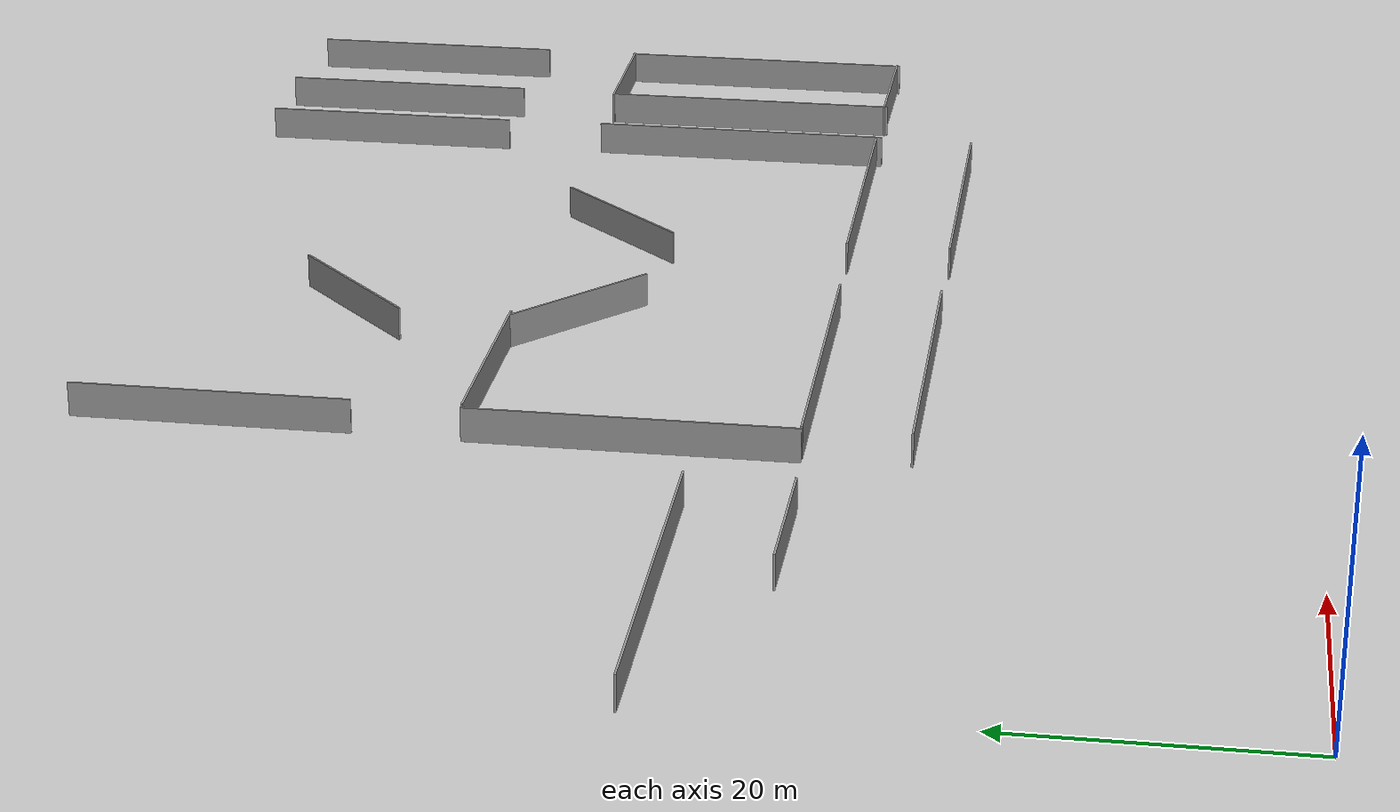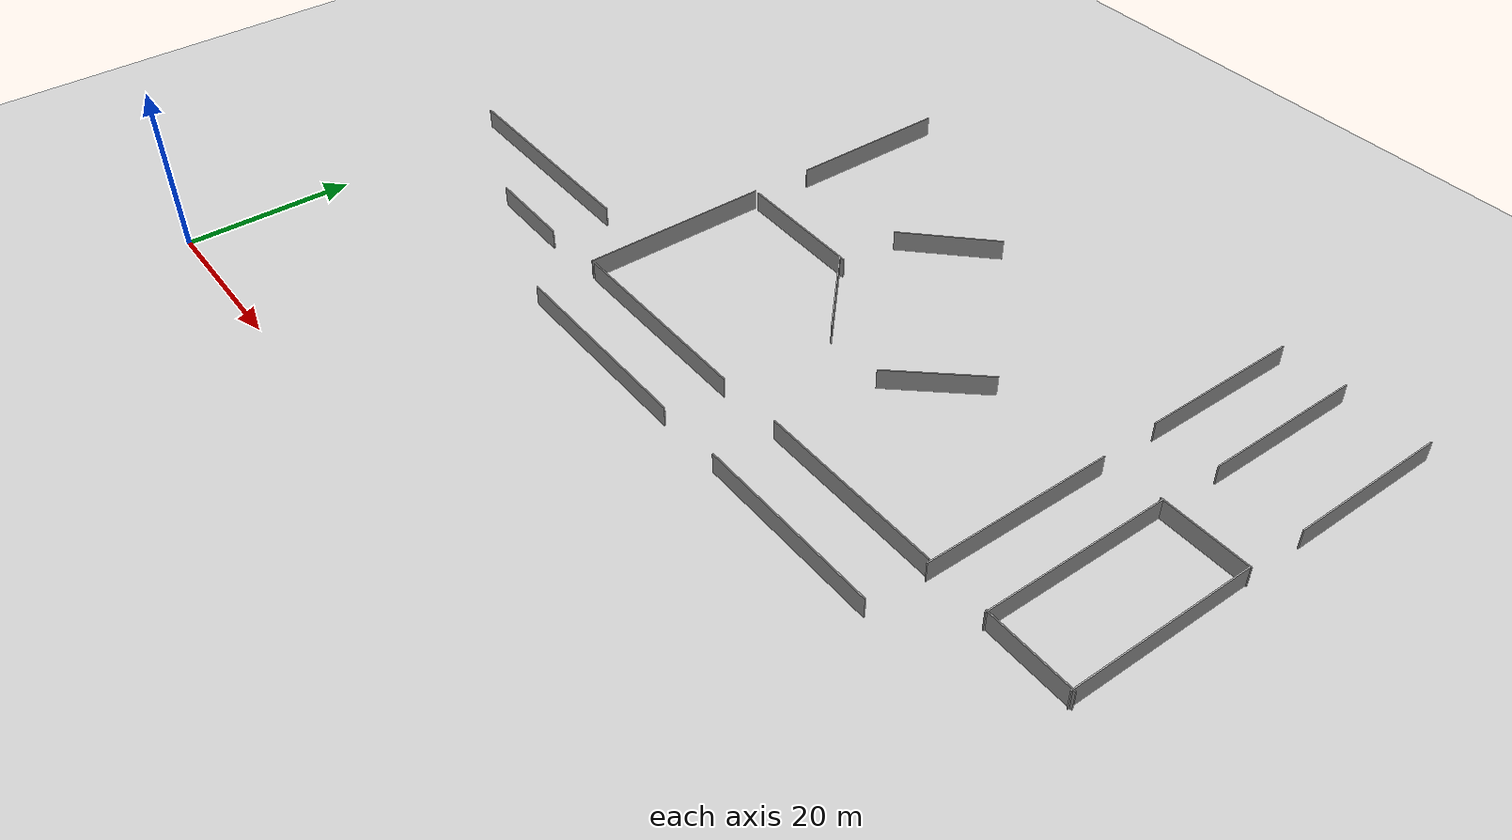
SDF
<sdf version="1.6">
 <world name="default">
  <model name="ground_plane">
   <static>1</static>
   <link name="link">
    <collision name="collision">
     <geometry><plane><normal>0 0 1</normal><size>100 100</size></plane></geometry>
     <surface>
      <contact><collide_bitmask>65535</collide_bitmask></contact>
      <friction><ode><mu>100</mu><mu2>50</mu2></ode></friction>
     </surface>
    </collision>
    <visual name="visual">
     <cast_shadows>0</cast_shadows>
     <geometry><plane><normal>0 0 1</normal><size>100 100</size></plane></geometry>
     <material>
      <script><uri>file://media/materials/scripts/gazebo.material</uri><name>Gazebo/Grey</name></script>
     </material>
    </visual>
   </link>
  </model>
  <model name="en_uzun_duvar2_clone_1_clone_clone_clone_0">
   <link name="Wall_2">
    <pose>10.2656 7.53235 0 0 -0 0</pose>
    <inertial>
     <inertia><ixx>0</ixx><ixy>0</ixy><ixz>0</ixz><iyy>0</iyy><iyz>0</iyz><izz>0</izz></inertia>
     <mass>0</mass>
    </inertial>
    <visual name="Wall_2_Visual">
     <pose>0 0 1.25 0 -0 0</pose>
     <geometry><box><size>19.779 0.15 2.5</size></box></geometry>
     <material>
      <script><uri>file://media/materials/scripts/gazebo.material</uri><name>Gazebo/Grey</name></script>
      <ambient>1 1 1 1</ambient>
     </material>
     <meta><layer>0</layer></meta>
    </visual>
    <collision name="Wall_2_Collision">
     <pose>0 0 1.25 0 -0 0</pose>
     <geometry><box><size>19.779 0.15 2.5</size></box></geometry>
     <surface>
      <friction>
       <ode><mu>1</mu><mu2>1</mu2><fdir1>0 0 0</fdir1><slip1>0</slip1><slip2>0</slip2></ode>
       <torsional>
        <coefficient>1</coefficient>
        <patch_radius>0</patch_radius>
        <surface_radius>0</surface_radius>
        <use_patch_radius>1</use_patch_radius>
        <ode><slip>0</slip></ode>
       </torsional>
      </friction>
      <bounce><restitution_coefficient>0</restitution_coefficient><threshold>1e+06</threshold></bounce>
      <contact>
       <collide_without_contact>0</collide_without_contact>
       <collide_without_contact_bitmask>1</collide_without_contact_bitmask>
       <collide_bitmask>1</collide_bitmask>
       <ode>
        <soft_cfm>0</soft_cfm>
        <soft_erp>0.2</soft_erp>
        <kp>1e+13</kp>
        <kd>1</kd>
        <max_vel>0.01</max_vel>
        <min_depth>0</min_depth>
       </ode>
       <bullet>
        <split_impulse>1</split_impulse>
        <split_impulse_penetration_threshold>-0.01</split_impulse_penetration_threshold>
        <soft_cfm>0</soft_cfm>
        <soft_erp>0.2</soft_erp>
        <kp>1e+13</kp>
        <kd>1</kd>
       </bullet>
      </contact>
     </surface>
    </collision>
   </link>
   <static>1</static>
   <pose>116.494 64.1139 0 0 -0 1.57059</pose>
  </model>
  <model name="en_uzun_duvar2_clone_1_clone_clone_clone_1">
   <link name="Wall_2">
    <pose>10.2656 7.53235 0 0 -0 0</pose>
    <inertial>
     <inertia><ixx>0</ixx><ixy>0</ixy><ixz>0</ixz><iyy>0</iyy><iyz>0</iyz><izz>0</izz></inertia>
     <mass>0</mass>
    </inertial>
    <visual name="Wall_2_Visual">
     <pose>0 0 1.25 0 -0 0</pose>
     <geometry><box><size>19.779 0.15 2.5</size></box></geometry>
     <material>
      <script><uri>file://media/materials/scripts/gazebo.material</uri><name>Gazebo/Grey</name></script>
      <ambient>1 1 1 1</ambient>
     </material>
     <meta><layer>0</layer></meta>
    </visual>
    <collision name="Wall_2_Collision">
     <pose>0 0 1.25 0 -0 0</pose>
     <geometry><box><size>19.779 0.15 2.5</size></box></geometry>
     <surface>
      <friction>
       <ode><mu>1</mu><mu2>1</mu2><fdir1>0 0 0</fdir1><slip1>0</slip1><slip2>0</slip2></ode>
       <torsional>
        <coefficient>1</coefficient>
        <patch_radius>0</patch_radius>
        <surface_radius>0</surface_radius>
        <use_patch_radius>1</use_patch_radius>
        <ode><slip>0</slip></ode>
       </torsional>
      </friction>
      <bounce><restitution_coefficient>0</restitution_coefficient><threshold>1e+06</threshold></bounce>
      <contact>
       <collide_without_contact>0</collide_without_contact>
       <collide_without_contact_bitmask>1</collide_without_contact_bitmask>
       <collide_bitmask>1</collide_bitmask>
       <ode>
        <soft_cfm>0</soft_cfm>
        <soft_erp>0.2</soft_erp>
        <kp>1e+13</kp>
        <kd>1</kd>
        <max_vel>0.01</max_vel>
        <min_depth>0</min_depth>
       </ode>
       <bullet>
        <split_impulse>1</split_impulse>
        <split_impulse_penetration_threshold>-0.01</split_impulse_penetration_threshold>
        <soft_cfm>0</soft_cfm>
        <soft_erp>0.2</soft_erp>
        <kp>1e+13</kp>
        <kd>1</kd>
       </bullet>
      </contact>
     </surface>
    </collision>
   </link>
   <static>1</static>
   <pose>106.131 64.4436 0 0 -0 1.57059</pose>
  </model>
  <model name="en_uzun_duvar2_clone_1_clone_clone_clone_2">
   <link name="Wall_2">
    <pose>10.2656 7.53235 0 0 -0 0</pose>
    <inertial>
     <inertia><ixx>0</ixx><ixy>0</ixy><ixz>0</ixz><iyy>0</iyy><iyz>0</iyz><izz>0</izz></inertia>
     <mass>0</mass>
    </inertial>
    <visual name="Wall_2_Visual">
     <pose>0 0 1.25 0 -0 0</pose>
     <geometry><box><size>19.779 0.15 2.5</size></box></geometry>
     <material>
      <script><uri>file://media/materials/scripts/gazebo.material</uri><name>Gazebo/Grey</name></script>
      <ambient>1 1 1 1</ambient>
     </material>
     <meta><layer>0</layer></meta>
    </visual>
    <collision name="Wall_2_Collision">
     <pose>0 0 1.25 0 -0 0</pose>
     <geometry><box><size>19.779 0.15 2.5</size></box></geometry>
     <surface>
      <friction>
       <ode><mu>1</mu><mu2>1</mu2><fdir1>0 0 0</fdir1><slip1>0</slip1><slip2>0</slip2></ode>
       <torsional>
        <coefficient>1</coefficient>
        <patch_radius>0</patch_radius>
        <surface_radius>0</surface_radius>
        <use_patch_radius>1</use_patch_radius>
        <ode><slip>0</slip></ode>
       </torsional>
      </friction>
      <bounce><restitution_coefficient>0</restitution_coefficient><threshold>1e+06</threshold></bounce>
      <contact>
       <collide_without_contact>0</collide_without_contact>
       <collide_without_contact_bitmask>1</collide_without_contact_bitmask>
       <collide_bitmask>1</collide_bitmask>
       <ode>
        <soft_cfm>0</soft_cfm>
        <soft_erp>0.2</soft_erp>
        <kp>1e+13</kp>
        <kd>1</kd>
        <max_vel>0.01</max_vel>
        <min_depth>0</min_depth>
       </ode>
       <bullet>
        <split_impulse>1</split_impulse>
        <split_impulse_penetration_threshold>-0.01</split_impulse_penetration_threshold>
        <soft_cfm>0</soft_cfm>
        <soft_erp>0.2</soft_erp>
        <kp>1e+13</kp>
        <kd>1</kd>
       </bullet>
      </contact>
     </surface>
    </collision>
   </link>
   <static>1</static>
   <pose>98.2776 64.2004 0 0 -0 1.57059</pose>
  </model>
  <model name="en_uzun_duvar2_clone_1_clone_clone_clone_5">
   <link name="Wall_2">
    <pose>10.2656 7.53235 0 0 -0 0</pose>
    <inertial>
     <inertia><ixx>0</ixx><ixy>0</ixy><ixz>0</ixz><iyy>0</iyy><iyz>0</iyz><izz>0</izz></inertia>
     <mass>0</mass>
    </inertial>
    <visual name="Wall_2_Visual">
     <pose>0 0 1.25 0 -0 0</pose>
     <geometry><box><size>19.779 0.15 2.5</size></box></geometry>
     <material>
      <script><uri>file://media/materials/scripts/gazebo.material</uri><name>Gazebo/Grey</name></script>
      <ambient>1 1 1 1</ambient>
     </material>
     <meta><layer>0</layer></meta>
    </visual>
    <collision name="Wall_2_Collision">
     <pose>0 0 1.25 0 -0 0</pose>
     <geometry><box><size>19.779 0.15 2.5</size></box></geometry>
     <surface>
      <friction>
       <ode><mu>1</mu><mu2>1</mu2><fdir1>0 0 0</fdir1><slip1>0</slip1><slip2>0</slip2></ode>
       <torsional>
        <coefficient>1</coefficient>
        <patch_radius>0</patch_radius>
        <surface_radius>0</surface_radius>
        <use_patch_radius>1</use_patch_radius>
        <ode><slip>0</slip></ode>
       </torsional>
      </friction>
      <bounce><restitution_coefficient>0</restitution_coefficient><threshold>1e+06</threshold></bounce>
      <contact>
       <collide_without_contact>0</collide_without_contact>
       <collide_without_contact_bitmask>1</collide_without_contact_bitmask>
       <collide_bitmask>1</collide_bitmask>
       <ode>
        <soft_cfm>0</soft_cfm>
        <soft_erp>0.2</soft_erp>
        <kp>1e+13</kp>
        <kd>1</kd>
        <max_vel>0.01</max_vel>
        <min_depth>0</min_depth>
       </ode>
       <bullet>
        <split_impulse>1</split_impulse>
        <split_impulse_penetration_threshold>-0.01</split_impulse_penetration_threshold>
        <soft_cfm>0</soft_cfm>
        <soft_erp>0.2</soft_erp>
        <kp>1e+13</kp>
        <kd>1</kd>
       </bullet>
      </contact>
     </surface>
    </collision>
   </link>
   <static>1</static>
   <pose>41.972 64.4212 0 0 -0 1.57059</pose>
  </model>
  <model name="en_uzun_duvar2_clone_1_clone_clone_clone_clone_0">
   <link name="Wall_2">
    <pose>9.82359 7.53236 0 0 -0 0</pose>
    <inertial>
     <inertia><ixx>0</ixx><ixy>0</ixy><ixz>0</ixz><iyy>0</iyy><iyz>0</iyz><izz>0</izz></inertia>
     <mass>0</mass>
    </inertial>
    <visual name="Wall_2_Visual">
     <pose>0 0 1.25 0 -0 0</pose>
     <geometry><box><size>11.0273 0.15 2.5</size></box></geometry>
     <material>
      <script><uri>file://media/materials/scripts/gazebo.material</uri><name>Gazebo/Grey</name></script>
      <ambient>1 1 1 1</ambient>
     </material>
     <meta><layer>0</layer></meta>
    </visual>
    <collision name="Wall_2_Collision">
     <pose>0 0 1.25 0 -0 0</pose>
     <geometry><box><size>11.0273 0.15 2.5</size></box></geometry>
     <surface>
      <friction>
       <ode><mu>1</mu><mu2>1</mu2><fdir1>0 0 0</fdir1><slip1>0</slip1><slip2>0</slip2></ode>
       <torsional>
        <coefficient>1</coefficient>
        <patch_radius>0</patch_radius>
        <surface_radius>0</surface_radius>
        <use_patch_radius>1</use_patch_radius>
        <ode><slip>0</slip></ode>
       </torsional>
      </friction>
      <bounce><restitution_coefficient>0</restitution_coefficient><threshold>1e+06</threshold></bounce>
      <contact>
       <collide_without_contact>0</collide_without_contact>
       <collide_without_contact_bitmask>1</collide_without_contact_bitmask>
       <collide_bitmask>1</collide_bitmask>
       <ode>
        <soft_cfm>0</soft_cfm>
        <soft_erp>0.2</soft_erp>
        <kp>1e+13</kp>
        <kd>1</kd>
        <max_vel>0.01</max_vel>
        <min_depth>0</min_depth>
       </ode>
       <bullet>
        <split_impulse>1</split_impulse>
        <split_impulse_penetration_threshold>-0.01</split_impulse_penetration_threshold>
        <soft_cfm>0</soft_cfm>
        <soft_erp>0.2</soft_erp>
        <kp>1e+13</kp>
        <kd>1</kd>
       </bullet>
      </contact>
     </surface>
    </collision>
   </link>
   <static>1</static>
   <pose>113.523 64.4952 0 0 -0 3.13031</pose>
  </model>
  <model name="en_uzun_duvar2_clone_1_clone_clone_clone_clone_2">
   <link name="Wall_2">
    <pose>9.82359 7.53236 0 0 -0 0</pose>
    <inertial>
     <inertia><ixx>0</ixx><ixy>0</ixy><ixz>0</ixz><iyy>0</iyy><iyz>0</iyz><izz>0</izz></inertia>
     <mass>0</mass>
    </inertial>
    <visual name="Wall_2_Visual">
     <pose>0 0 1.25 0 -0 0</pose>
     <geometry><box><size>11.0273 0.15 2.5</size></box></geometry>
     <material>
      <script><uri>file://media/materials/scripts/gazebo.material</uri><name>Gazebo/Grey</name></script>
      <ambient>1 1 1 1</ambient>
     </material>
     <meta><layer>0</layer></meta>
    </visual>
    <collision name="Wall_2_Collision">
     <pose>0 0 1.25 0 -0 0</pose>
     <geometry><box><size>11.0273 0.15 2.5</size></box></geometry>
     <surface>
      <friction>
       <ode><mu>1</mu><mu2>1</mu2><fdir1>0 0 0</fdir1><slip1>0</slip1><slip2>0</slip2></ode>
       <torsional>
        <coefficient>1</coefficient>
        <patch_radius>0</patch_radius>
        <surface_radius>0</surface_radius>
        <use_patch_radius>1</use_patch_radius>
        <ode><slip>0</slip></ode>
       </torsional>
      </friction>
      <bounce><restitution_coefficient>0</restitution_coefficient><threshold>1e+06</threshold></bounce>
      <contact>
       <collide_without_contact>0</collide_without_contact>
       <collide_without_contact_bitmask>1</collide_without_contact_bitmask>
       <collide_bitmask>1</collide_bitmask>
       <ode>
        <soft_cfm>0</soft_cfm>
        <soft_erp>0.2</soft_erp>
        <kp>1e+13</kp>
        <kd>1</kd>
        <max_vel>0.01</max_vel>
        <min_depth>0</min_depth>
       </ode>
       <bullet>
        <split_impulse>1</split_impulse>
        <split_impulse_penetration_threshold>-0.01</split_impulse_penetration_threshold>
        <soft_cfm>0</soft_cfm>
        <soft_erp>0.2</soft_erp>
        <kp>1e+13</kp>
        <kd>1</kd>
       </bullet>
      </contact>
     </surface>
    </collision>
   </link>
   <static>1</static>
   <pose>113.659 41.7843 0 0 -0 3.13031</pose>
  </model>
  <model name="en_uzun_duvar2_clone_1_clone_clone_clone_10_clone">
   <link name="Wall_2">
    <pose>10.2656 7.53235 0 0 -0 0</pose>
    <inertial>
     <inertia><ixx>0</ixx><ixy>0</ixy><ixz>0</ixz><iyy>0</iyy><iyz>0</iyz><izz>0</izz></inertia>
     <mass>0</mass>
    </inertial>
    <visual name="Wall_2_Visual">
     <pose>0 0 1.25 0 -0 0</pose>
     <geometry><box><size>23.1013 0.15 2.5</size></box></geometry>
     <material>
      <script><uri>file://media/materials/scripts/gazebo.material</uri><name>Gazebo/Grey</name></script>
      <ambient>1 1 1 1</ambient>
     </material>
     <meta><layer>0</layer></meta>
    </visual>
    <collision name="Wall_2_Collision">
     <pose>0 0 1.25 0 -0 0</pose>
     <geometry><box><size>23.1013 0.15 2.5</size></box></geometry>
     <surface>
      <friction>
       <ode><mu>1</mu><mu2>1</mu2><fdir1>0 0 0</fdir1><slip1>0</slip1><slip2>0</slip2></ode>
       <torsional>
        <coefficient>1</coefficient>
        <patch_radius>0</patch_radius>
        <surface_radius>0</surface_radius>
        <use_patch_radius>1</use_patch_radius>
        <ode><slip>0</slip></ode>
       </torsional>
      </friction>
      <bounce><restitution_coefficient>0</restitution_coefficient><threshold>1e+06</threshold></bounce>
      <contact>
       <collide_without_contact>0</collide_without_contact>
       <collide_without_contact_bitmask>1</collide_without_contact_bitmask>
       <collide_bitmask>1</collide_bitmask>
       <ode>
        <soft_cfm>0</soft_cfm>
        <soft_erp>0.2</soft_erp>
        <kp>1e+13</kp>
        <kd>1</kd>
        <max_vel>0.01</max_vel>
        <min_depth>0</min_depth>
       </ode>
       <bullet>
        <split_impulse>1</split_impulse>
        <split_impulse_penetration_threshold>-0.01</split_impulse_penetration_threshold>
        <soft_cfm>0</soft_cfm>
        <soft_erp>0.2</soft_erp>
        <kp>1e+13</kp>
        <kd>1</kd>
       </bullet>
      </contact>
     </surface>
    </collision>
   </link>
   <static>1</static>
   <pose>116.467 35.3175 0 0 -0 1.57059</pose>
  </model>
  <model name="en_uzun_duvar2_clone_1_clone_clone_clone_10_clone_0">
   <link name="Wall_2">
    <pose>10.2656 7.53235 0 0 -0 0</pose>
    <inertial>
     <inertia><ixx>0</ixx><ixy>0</ixy><ixz>0</ixz><iyy>0</iyy><iyz>0</iyz><izz>0</izz></inertia>
     <mass>0</mass>
    </inertial>
    <visual name="Wall_2_Visual">
     <pose>0 0 1.25 0 -0 0</pose>
     <geometry><box><size>23.1013 0.15 2.5</size></box></geometry>
     <material>
      <script><uri>file://media/materials/scripts/gazebo.material</uri><name>Gazebo/Grey</name></script>
      <ambient>1 1 1 1</ambient>
     </material>
     <meta><layer>0</layer></meta>
    </visual>
    <collision name="Wall_2_Collision">
     <pose>0 0 1.25 0 -0 0</pose>
     <geometry><box><size>23.1013 0.15 2.5</size></box></geometry>
     <surface>
      <friction>
       <ode><mu>1</mu><mu2>1</mu2><fdir1>0 0 0</fdir1><slip1>0</slip1><slip2>0</slip2></ode>
       <torsional>
        <coefficient>1</coefficient>
        <patch_radius>0</patch_radius>
        <surface_radius>0</surface_radius>
        <use_patch_radius>1</use_patch_radius>
        <ode><slip>0</slip></ode>
       </torsional>
      </friction>
      <bounce><restitution_coefficient>0</restitution_coefficient><threshold>1e+06</threshold></bounce>
      <contact>
       <collide_without_contact>0</collide_without_contact>
       <collide_without_contact_bitmask>1</collide_without_contact_bitmask>
       <collide_bitmask>1</collide_bitmask>
       <ode>
        <soft_cfm>0</soft_cfm>
        <soft_erp>0.2</soft_erp>
        <kp>1e+13</kp>
        <kd>1</kd>
        <max_vel>0.01</max_vel>
        <min_depth>0</min_depth>
       </ode>
       <bullet>
        <split_impulse>1</split_impulse>
        <split_impulse_penetration_threshold>-0.01</split_impulse_penetration_threshold>
        <soft_cfm>0</soft_cfm>
        <soft_erp>0.2</soft_erp>
        <kp>1e+13</kp>
        <kd>1</kd>
       </bullet>
      </contact>
     </surface>
    </collision>
   </link>
   <static>1</static>
   <pose>105.933 35.4263 0 0 -0 1.57059</pose>
  </model>
  <model name="en_uzun_duvar2_clone_1_clone_clone_clone_10_clone_1">
   <link name="Wall_2">
    <pose>10.2656 7.53235 0 0 -0 0</pose>
    <inertial>
     <inertia><ixx>0</ixx><ixy>0</ixy><ixz>0</ixz><iyy>0</iyy><iyz>0</iyz><izz>0</izz></inertia>
     <mass>0</mass>
    </inertial>
    <visual name="Wall_2_Visual">
     <pose>0 0 1.25 0 -0 0</pose>
     <geometry><box><size>23.1013 0.15 2.5</size></box></geometry>
     <material>
      <script><uri>file://media/materials/scripts/gazebo.material</uri><name>Gazebo/Grey</name></script>
      <ambient>1 1 1 1</ambient>
     </material>
     <meta><layer>0</layer></meta>
    </visual>
    <collision name="Wall_2_Collision">
     <pose>0 0 1.25 0 -0 0</pose>
     <geometry><box><size>23.1013 0.15 2.5</size></box></geometry>
     <surface>
      <friction>
       <ode><mu>1</mu><mu2>1</mu2><fdir1>0 0 0</fdir1><slip1>0</slip1><slip2>0</slip2></ode>
       <torsional>
        <coefficient>1</coefficient>
        <patch_radius>0</patch_radius>
        <surface_radius>0</surface_radius>
        <use_patch_radius>1</use_patch_radius>
        <ode><slip>0</slip></ode>
       </torsional>
      </friction>
      <bounce><restitution_coefficient>0</restitution_coefficient><threshold>1e+06</threshold></bounce>
      <contact>
       <collide_without_contact>0</collide_without_contact>
       <collide_without_contact_bitmask>1</collide_without_contact_bitmask>
       <collide_bitmask>1</collide_bitmask>
       <ode>
        <soft_cfm>0</soft_cfm>
        <soft_erp>0.2</soft_erp>
        <kp>1e+13</kp>
        <kd>1</kd>
        <max_vel>0.01</max_vel>
        <min_depth>0</min_depth>
       </ode>
       <bullet>
        <split_impulse>1</split_impulse>
        <split_impulse_penetration_threshold>-0.01</split_impulse_penetration_threshold>
        <soft_cfm>0</soft_cfm>
        <soft_erp>0.2</soft_erp>
        <kp>1e+13</kp>
        <kd>1</kd>
       </bullet>
      </contact>
     </surface>
    </collision>
   </link>
   <static>1</static>
   <pose>98.5301 35.2119 0 0 -0 1.57059</pose>
  </model>
  <model name="en_uzun_duvar2_clone_1_clone_clone_clone_10_clone_2">
   <link name="Wall_2">
    <pose>10.2656 7.53235 0 0 -0 0</pose>
    <inertial>
     <inertia><ixx>0</ixx><ixy>0</ixy><ixz>0</ixz><iyy>0</iyy><iyz>0</iyz><izz>0</izz></inertia>
     <mass>0</mass>
    </inertial>
    <visual name="Wall_2_Visual">
     <pose>0 0 1.25 0 -0 0</pose>
     <geometry><box><size>23.1013 0.15 2.5</size></box></geometry>
     <material>
      <script><uri>file://media/materials/scripts/gazebo.material</uri><name>Gazebo/Grey</name></script>
      <ambient>1 1 1 1</ambient>
     </material>
     <meta><layer>0</layer></meta>
    </visual>
    <collision name="Wall_2_Collision">
     <pose>0 0 1.25 0 -0 0</pose>
     <geometry><box><size>23.1013 0.15 2.5</size></box></geometry>
     <surface>
      <friction>
       <ode><mu>1</mu><mu2>1</mu2><fdir1>0 0 0</fdir1><slip1>0</slip1><slip2>0</slip2></ode>
       <torsional>
        <coefficient>1</coefficient>
        <patch_radius>0</patch_radius>
        <surface_radius>0</surface_radius>
        <use_patch_radius>1</use_patch_radius>
        <ode><slip>0</slip></ode>
       </torsional>
      </friction>
      <bounce><restitution_coefficient>0</restitution_coefficient><threshold>1e+06</threshold></bounce>
      <contact>
       <collide_without_contact>0</collide_without_contact>
       <collide_without_contact_bitmask>1</collide_without_contact_bitmask>
       <collide_bitmask>1</collide_bitmask>
       <ode>
        <soft_cfm>0</soft_cfm>
        <soft_erp>0.2</soft_erp>
        <kp>1e+13</kp>
        <kd>1</kd>
        <max_vel>0.01</max_vel>
        <min_depth>0</min_depth>
       </ode>
       <bullet>
        <split_impulse>1</split_impulse>
        <split_impulse_penetration_threshold>-0.01</split_impulse_penetration_threshold>
        <soft_cfm>0</soft_cfm>
        <soft_erp>0.2</soft_erp>
        <kp>1e+13</kp>
        <kd>1</kd>
       </bullet>
      </contact>
     </surface>
    </collision>
   </link>
   <static>1</static>
   <pose>41.7465 35.4057 0 0 -0 1.57059</pose>
  </model>
  <model name="en_uzun_duvar2_clone_1_clone_clone_clone_4_clone_0">
   <link name="Wall_2">
    <pose>10.2656 7.53235 0 0 -0 0</pose>
    <inertial>
     <inertia><ixx>0</ixx><ixy>0</ixy><ixz>0</ixz><iyy>0</iyy><iyz>0</iyz><izz>0</izz></inertia>
     <mass>0</mass>
    </inertial>
    <visual name="Wall_2_Visual">
     <pose>0 0 1.25 0 -0 0</pose>
     <geometry><box><size>23.1907 0.15 2.5</size></box></geometry>
     <material>
      <script><uri>file://media/materials/scripts/gazebo.material</uri><name>Gazebo/Grey</name></script>
      <ambient>1 1 1 1</ambient>
     </material>
     <meta><layer>0</layer></meta>
    </visual>
    <collision name="Wall_2_Collision">
     <pose>0 0 1.25 0 -0 0</pose>
     <geometry><box><size>23.1907 0.15 2.5</size></box></geometry>
     <surface>
      <friction>
       <ode><mu>1</mu><mu2>1</mu2><fdir1>0 0 0</fdir1><slip1>0</slip1><slip2>0</slip2></ode>
       <torsional>
        <coefficient>1</coefficient>
        <patch_radius>0</patch_radius>
        <surface_radius>0</surface_radius>
        <use_patch_radius>1</use_patch_radius>
        <ode><slip>0</slip></ode>
       </torsional>
      </friction>
      <bounce><restitution_coefficient>0</restitution_coefficient><threshold>1e+06</threshold></bounce>
      <contact>
       <collide_without_contact>0</collide_without_contact>
       <collide_without_contact_bitmask>1</collide_without_contact_bitmask>
       <collide_bitmask>1</collide_bitmask>
       <ode>
        <soft_cfm>0</soft_cfm>
        <soft_erp>0.2</soft_erp>
        <kp>1e+13</kp>
        <kd>1</kd>
        <max_vel>0.01</max_vel>
        <min_depth>0</min_depth>
       </ode>
       <bullet>
        <split_impulse>1</split_impulse>
        <split_impulse_penetration_threshold>-0.01</split_impulse_penetration_threshold>
        <soft_cfm>0</soft_cfm>
        <soft_erp>0.2</soft_erp>
        <kp>1e+13</kp>
        <kd>1</kd>
       </bullet>
      </contact>
     </surface>
    </collision>
   </link>
   <static>1</static>
   <pose>89.4142 41.951 0 0 -0 3.14036</pose>
  </model>
  <model name="en_uzun_duvar2_clone_1_clone_clone_clone_4_clone_1">
   <link name="Wall_2">
    <pose>10.2656 7.53235 0 0 -0 0</pose>
    <inertial>
     <inertia><ixx>0</ixx><ixy>0</ixy><ixz>0</ixz><iyy>0</iyy><iyz>0</iyz><izz>0</izz></inertia>
     <mass>0</mass>
    </inertial>
    <visual name="Wall_2_Visual">
     <pose>0 0 1.25 0 -0 0</pose>
     <geometry><box><size>23.1907 0.15 2.5</size></box></geometry>
     <material>
      <script><uri>file://media/materials/scripts/gazebo.material</uri><name>Gazebo/Grey</name></script>
      <ambient>1 1 1 1</ambient>
     </material>
     <meta><layer>0</layer></meta>
    </visual>
    <collision name="Wall_2_Collision">
     <pose>0 0 1.25 0 -0 0</pose>
     <geometry><box><size>23.1907 0.15 2.5</size></box></geometry>
     <surface>
      <friction>
       <ode><mu>1</mu><mu2>1</mu2><fdir1>0 0 0</fdir1><slip1>0</slip1><slip2>0</slip2></ode>
       <torsional>
        <coefficient>1</coefficient>
        <patch_radius>0</patch_radius>
        <surface_radius>0</surface_radius>
        <use_patch_radius>1</use_patch_radius>
        <ode><slip>0</slip></ode>
       </torsional>
      </friction>
      <bounce><restitution_coefficient>0</restitution_coefficient><threshold>1e+06</threshold></bounce>
      <contact>
       <collide_without_contact>0</collide_without_contact>
       <collide_without_contact_bitmask>1</collide_without_contact_bitmask>
       <collide_bitmask>1</collide_bitmask>
       <ode>
        <soft_cfm>0</soft_cfm>
        <soft_erp>0.2</soft_erp>
        <kp>1e+13</kp>
        <kd>1</kd>
        <max_vel>0.01</max_vel>
        <min_depth>0</min_depth>
       </ode>
       <bullet>
        <split_impulse>1</split_impulse>
        <split_impulse_penetration_threshold>-0.01</split_impulse_penetration_threshold>
        <soft_cfm>0</soft_cfm>
        <soft_erp>0.2</soft_erp>
        <kp>1e+13</kp>
        <kd>1</kd>
       </bullet>
      </contact>
     </surface>
    </collision>
   </link>
   <static>1</static>
   <pose>89.5824 34.2624 0 0 -0 3.14036</pose>
  </model>
  <model name="en_uzun_duvar2_clone_1_clone_clone_clone_4_clone_3_clone">
   <link name="Wall_2">
    <pose>10.2656 7.53235 0 0 -0 0</pose>
    <inertial>
     <inertia><ixx>0</ixx><ixy>0</ixy><ixz>0</ixz><iyy>0</iyy><iyz>0</iyz><izz>0</izz></inertia>
     <mass>0</mass>
    </inertial>
    <visual name="Wall_2_Visual">
     <pose>0 0 1.25 0 -0 0</pose>
     <geometry><box><size>24.9029 0.15 2.5</size></box></geometry>
     <material>
      <script><uri>file://media/materials/scripts/gazebo.material</uri><name>Gazebo/Grey</name></script>
      <ambient>1 1 1 1</ambient>
     </material>
     <meta><layer>0</layer></meta>
    </visual>
    <collision name="Wall_2_Collision">
     <pose>0 0 1.25 0 -0 0</pose>
     <geometry><box><size>24.9029 0.15 2.5</size></box></geometry>
     <surface>
      <friction>
       <ode><mu>1</mu><mu2>1</mu2><fdir1>0 0 0</fdir1><slip1>0</slip1><slip2>0</slip2></ode>
       <torsional>
        <coefficient>1</coefficient>
        <patch_radius>0</patch_radius>
        <surface_radius>0</surface_radius>
        <use_patch_radius>1</use_patch_radius>
        <ode><slip>0</slip></ode>
       </torsional>
      </friction>
      <bounce><restitution_coefficient>0</restitution_coefficient><threshold>1e+06</threshold></bounce>
      <contact>
       <collide_without_contact>0</collide_without_contact>
       <collide_without_contact_bitmask>1</collide_without_contact_bitmask>
       <collide_bitmask>1</collide_bitmask>
       <ode>
        <soft_cfm>0</soft_cfm>
        <soft_erp>0.2</soft_erp>
        <kp>1e+13</kp>
        <kd>1</kd>
        <max_vel>0.01</max_vel>
        <min_depth>0</min_depth>
       </ode>
       <bullet>
        <split_impulse>1</split_impulse>
        <split_impulse_penetration_threshold>-0.01</split_impulse_penetration_threshold>
        <soft_cfm>0</soft_cfm>
        <soft_erp>0.2</soft_erp>
        <kp>1e+13</kp>
        <kd>1</kd>
       </bullet>
      </contact>
     </surface>
    </collision>
   </link>
   <static>1</static>
   <pose>57.2399 34.2725 0 0 -0 3.14036</pose>
  </model>
  <model name="en_uzun_duvar2_clone_1_clone_clone_clone_4_clone_3_clone_1">
   <link name="Wall_2">
    <pose>10.2656 7.53235 0 0 -0 0</pose>
    <inertial>
     <inertia><ixx>0</ixx><ixy>0</ixy><ixz>0</ixz><iyy>0</iyy><iyz>0</iyz><izz>0</izz></inertia>
     <mass>0</mass>
    </inertial>
    <visual name="Wall_2_Visual">
     <pose>0 0 1.25 0 -0 0</pose>
     <geometry><box><size>24.9029 0.15 2.5</size></box></geometry>
     <material>
      <script><uri>file://media/materials/scripts/gazebo.material</uri><name>Gazebo/Grey</name></script>
      <ambient>1 1 1 1</ambient>
     </material>
     <meta><layer>0</layer></meta>
    </visual>
    <collision name="Wall_2_Collision">
     <pose>0 0 1.25 0 -0 0</pose>
     <geometry><box><size>24.9029 0.15 2.5</size></box></geometry>
     <surface>
      <friction>
       <ode><mu>1</mu><mu2>1</mu2><fdir1>0 0 0</fdir1><slip1>0</slip1><slip2>0</slip2></ode>
       <torsional>
        <coefficient>1</coefficient>
        <patch_radius>0</patch_radius>
        <surface_radius>0</surface_radius>
        <use_patch_radius>1</use_patch_radius>
        <ode><slip>0</slip></ode>
       </torsional>
      </friction>
      <bounce><restitution_coefficient>0</restitution_coefficient><threshold>1e+06</threshold></bounce>
      <contact>
       <collide_without_contact>0</collide_without_contact>
       <collide_without_contact_bitmask>1</collide_without_contact_bitmask>
       <collide_bitmask>1</collide_bitmask>
       <ode>
        <soft_cfm>0</soft_cfm>
        <soft_erp>0.2</soft_erp>
        <kp>1e+13</kp>
        <kd>1</kd>
        <max_vel>0.01</max_vel>
        <min_depth>0</min_depth>
       </ode>
       <bullet>
        <split_impulse>1</split_impulse>
        <split_impulse_penetration_threshold>-0.01</split_impulse_penetration_threshold>
        <soft_cfm>0</soft_cfm>
        <soft_erp>0.2</soft_erp>
        <kp>1e+13</kp>
        <kd>1</kd>
       </bullet>
      </contact>
     </surface>
    </collision>
   </link>
   <static>1</static>
   <pose>57.3362 41.6807 0 0 -0 3.14036</pose>
  </model>
  <model name="en_uzun_duvar2_clone_1_clone_clone_clone_10_clone_5">
   <link name="Wall_2">
    <pose>10.2656 7.53235 0 0 -0 0</pose>
    <inertial>
     <inertia><ixx>0</ixx><ixy>0</ixy><ixz>0</ixz><iyy>0</iyy><iyz>0</iyz><izz>0</izz></inertia>
     <mass>0</mass>
    </inertial>
    <visual name="Wall_2_Visual">
     <pose>0 0 1.25 0 -0 0</pose>
     <geometry><box><size>16.4275 0.15 2.5</size></box></geometry>
     <material>
      <script><uri>file://media/materials/scripts/gazebo.material</uri><name>Gazebo/Grey</name></script>
      <ambient>1 1 1 1</ambient>
     </material>
     <meta><layer>0</layer></meta>
    </visual>
    <collision name="Wall_2_Collision">
     <pose>0 0 1.25 0 -0 0</pose>
     <geometry><box><size>16.4275 0.15 2.5</size></box></geometry>
     <surface>
      <friction>
       <ode><mu>1</mu><mu2>1</mu2><fdir1>0 0 0</fdir1><slip1>0</slip1><slip2>0</slip2></ode>
       <torsional>
        <coefficient>1</coefficient>
        <patch_radius>0</patch_radius>
        <surface_radius>0</surface_radius>
        <use_patch_radius>1</use_patch_radius>
        <ode><slip>0</slip></ode>
       </torsional>
      </friction>
      <bounce><restitution_coefficient>0</restitution_coefficient><threshold>1e+06</threshold></bounce>
      <contact>
       <collide_without_contact>0</collide_without_contact>
       <collide_without_contact_bitmask>1</collide_without_contact_bitmask>
       <collide_bitmask>1</collide_bitmask>
       <ode>
        <soft_cfm>0</soft_cfm>
        <soft_erp>0.2</soft_erp>
        <kp>1e+13</kp>
        <kd>1</kd>
        <max_vel>0.01</max_vel>
        <min_depth>0</min_depth>
       </ode>
       <bullet>
        <split_impulse>1</split_impulse>
        <split_impulse_penetration_threshold>-0.01</split_impulse_penetration_threshold>
        <soft_cfm>0</soft_cfm>
        <soft_erp>0.2</soft_erp>
        <kp>1e+13</kp>
        <kd>1</kd>
       </bullet>
      </contact>
     </surface>
    </collision>
   </link>
   <static>1</static>
   <pose>53.3252 64.4336 0 0 -0 3.12481</pose>
  </model>
  <model name="en_uzun_duvar2_clone_1_clone_clone_clone_10_clone_3_clone_1_clone_1">
   <link name="Wall_2">
    <pose>10.2656 7.53235 0 0 -0 0</pose>
    <inertial>
     <inertia><ixx>0</ixx><ixy>0</ixy><ixz>0</ixz><iyy>0</iyy><iyz>0</iyz><izz>0</izz></inertia>
     <mass>0</mass>
    </inertial>
    <visual name="Wall_2_Visual">
     <pose>0 0 1.25 0 -0 0</pose>
     <geometry><box><size>12.5656 0.15 2.5</size></box></geometry>
     <material>
      <script><uri>file://media/materials/scripts/gazebo.material</uri><name>Gazebo/Grey</name></script>
      <ambient>1 1 1 1</ambient>
     </material>
     <meta><layer>0</layer></meta>
    </visual>
    <collision name="Wall_2_Collision">
     <pose>0 0 1.25 0 -0 0</pose>
     <geometry><box><size>12.5656 0.15 2.5</size></box></geometry>
     <surface>
      <friction>
       <ode><mu>1</mu><mu2>1</mu2><fdir1>0 0 0</fdir1><slip1>0</slip1><slip2>0</slip2></ode>
       <torsional>
        <coefficient>1</coefficient>
        <patch_radius>0</patch_radius>
        <surface_radius>0</surface_radius>
        <use_patch_radius>1</use_patch_radius>
        <ode><slip>0</slip></ode>
       </torsional>
      </friction>
      <bounce><restitution_coefficient>0</restitution_coefficient><threshold>1e+06</threshold></bounce>
      <contact>
       <collide_without_contact>0</collide_without_contact>
       <collide_without_contact_bitmask>1</collide_without_contact_bitmask>
       <collide_bitmask>1</collide_bitmask>
       <ode>
        <soft_cfm>0</soft_cfm>
        <soft_erp>0.2</soft_erp>
        <kp>1e+13</kp>
        <kd>1</kd>
        <max_vel>0.01</max_vel>
        <min_depth>0</min_depth>
       </ode>
       <bullet>
        <split_impulse>1</split_impulse>
        <split_impulse_penetration_threshold>-0.01</split_impulse_penetration_threshold>
        <soft_cfm>0</soft_cfm>
        <soft_erp>0.2</soft_erp>
        <kp>1e+13</kp>
        <kd>1</kd>
       </bullet>
      </contact>
     </surface>
    </collision>
   </link>
   <static>1</static>
   <pose>52.9506 56.8258 0 0 -0 0.776766</pose>
  </model>
  <model name="en_uzun_duvar2_clone_1_clone_clone_clone_10_clone_3_clone_1_clone_2">
   <link name="Wall_2">
    <pose>10.2656 7.53235 0 0 -0 0</pose>
    <inertial>
     <inertia><ixx>0</ixx><ixy>0</ixy><ixz>0</ixz><iyy>0</iyy><iyz>0</iyz><izz>0</izz></inertia>
     <mass>0</mass>
    </inertial>
    <visual name="Wall_2_Visual">
     <pose>0 0 1.25 0 -0 0</pose>
     <geometry><box><size>12.5656 0.15 2.5</size></box></geometry>
     <material>
      <script><uri>file://media/materials/scripts/gazebo.material</uri><name>Gazebo/Grey</name></script>
      <ambient>1 1 1 1</ambient>
     </material>
     <meta><layer>0</layer></meta>
    </visual>
    <collision name="Wall_2_Collision">
     <pose>0 0 1.25 0 -0 0</pose>
     <geometry><box><size>12.5656 0.15 2.5</size></box></geometry>
     <surface>
      <friction>
       <ode><mu>1</mu><mu2>1</mu2><fdir1>0 0 0</fdir1><slip1>0</slip1><slip2>0</slip2></ode>
       <torsional>
        <coefficient>1</coefficient>
        <patch_radius>0</patch_radius>
        <surface_radius>0</surface_radius>
        <use_patch_radius>1</use_patch_radius>
        <ode><slip>0</slip></ode>
       </torsional>
      </friction>
      <bounce><restitution_coefficient>0</restitution_coefficient><threshold>1e+06</threshold></bounce>
      <contact>
       <collide_without_contact>0</collide_without_contact>
       <collide_without_contact_bitmask>1</collide_without_contact_bitmask>
       <collide_bitmask>1</collide_bitmask>
       <ode>
        <soft_cfm>0</soft_cfm>
        <soft_erp>0.2</soft_erp>
        <kp>1e+13</kp>
        <kd>1</kd>
        <max_vel>0.01</max_vel>
        <min_depth>0</min_depth>
       </ode>
       <bullet>
        <split_impulse>1</split_impulse>
        <split_impulse_penetration_threshold>-0.01</split_impulse_penetration_threshold>
        <soft_cfm>0</soft_cfm>
        <soft_erp>0.2</soft_erp>
        <kp>1e+13</kp>
        <kd>1</kd>
       </bullet>
      </contact>
     </surface>
    </collision>
   </link>
   <static>1</static>
   <pose>67.5074 51.1784 0 0 -0 2.38688</pose>
  </model>
  <model name="en_uzun_duvar2_clone_1_clone_clone_clone_10_clone_3_clone_1_clone_3">
   <link name="Wall_2">
    <pose>10.2656 7.53235 0 0 -0 0</pose>
    <inertial>
     <inertia><ixx>0</ixx><ixy>0</ixy><ixz>0</ixz><iyy>0</iyy><iyz>0</iyz><izz>0</izz></inertia>
     <mass>0</mass>
    </inertial>
    <visual name="Wall_2_Visual">
     <pose>0 0 1.25 0 -0 0</pose>
     <geometry><box><size>12.5656 0.15 2.5</size></box></geometry>
     <material>
      <script><uri>file://media/materials/scripts/gazebo.material</uri><name>Gazebo/Grey</name></script>
      <ambient>1 1 1 1</ambient>
     </material>
     <meta><layer>0</layer></meta>
    </visual>
    <collision name="Wall_2_Collision">
     <pose>0 0 1.25 0 -0 0</pose>
     <geometry><box><size>12.5656 0.15 2.5</size></box></geometry>
     <surface>
      <friction>
       <ode><mu>1</mu><mu2>1</mu2><fdir1>0 0 0</fdir1><slip1>0</slip1><slip2>0</slip2></ode>
       <torsional>
        <coefficient>1</coefficient>
        <patch_radius>0</patch_radius>
        <surface_radius>0</surface_radius>
        <use_patch_radius>1</use_patch_radius>
        <ode><slip>0</slip></ode>
       </torsional>
      </friction>
      <bounce><restitution_coefficient>0</restitution_coefficient><threshold>1e+06</threshold></bounce>
      <contact>
       <collide_without_contact>0</collide_without_contact>
       <collide_without_contact_bitmask>1</collide_without_contact_bitmask>
       <collide_bitmask>1</collide_bitmask>
       <ode>
        <soft_cfm>0</soft_cfm>
        <soft_erp>0.2</soft_erp>
        <kp>1e+13</kp>
        <kd>1</kd>
        <max_vel>0.01</max_vel>
        <min_depth>0</min_depth>
       </ode>
       <bullet>
        <split_impulse>1</split_impulse>
        <split_impulse_penetration_threshold>-0.01</split_impulse_penetration_threshold>
        <soft_cfm>0</soft_cfm>
        <soft_erp>0.2</soft_erp>
        <kp>1e+13</kp>
        <kd>1</kd>
       </bullet>
      </contact>
     </surface>
    </collision>
   </link>
   <static>1</static>
   <pose>70.7572 39.6243 0 0 -0 0.836186</pose>
  </model>
  <model name="en_uzun_duvar2_clone_1_clone_clone_clone_4_clone_3_clone_3">
   <link name="Wall_2">
    <pose>10.2656 7.53235 0 0 -0 0</pose>
    <inertial>
     <inertia><ixx>0</ixx><ixy>0</ixy><ixz>0</ixz><iyy>0</iyy><iyz>0</iyz><izz>0</izz></inertia>
     <mass>0</mass>
    </inertial>
    <visual name="Wall_2_Visual">
     <pose>0 0 1.25 0 -0 0</pose>
     <geometry><box><size>27.457 0.15 2.5</size></box></geometry>
     <material>
      <script><uri>file://media/materials/scripts/gazebo.material</uri><name>Gazebo/Grey</name></script>
      <ambient>1 1 1 1</ambient>
     </material>
     <meta><layer>0</layer></meta>
    </visual>
    <collision name="Wall_2_Collision">
     <pose>0 0 1.25 0 -0 0</pose>
     <geometry><box><size>27.457 0.15 2.5</size></box></geometry>
     <surface>
      <friction>
       <ode><mu>1</mu><mu2>1</mu2><fdir1>0 0 0</fdir1><slip1>0</slip1><slip2>0</slip2></ode>
       <torsional>
        <coefficient>1</coefficient>
        <patch_radius>0</patch_radius>
        <surface_radius>0</surface_radius>
        <use_patch_radius>1</use_patch_radius>
        <ode><slip>0</slip></ode>
       </torsional>
      </friction>
      <bounce><restitution_coefficient>0</restitution_coefficient><threshold>1e+06</threshold></bounce>
      <contact>
       <collide_without_contact>0</collide_without_contact>
       <collide_without_contact_bitmask>1</collide_without_contact_bitmask>
       <collide_bitmask>1</collide_bitmask>
       <ode>
        <soft_cfm>0</soft_cfm>
        <soft_erp>0.2</soft_erp>
        <kp>1e+13</kp>
        <kd>1</kd>
        <max_vel>0.01</max_vel>
        <min_depth>0</min_depth>
       </ode>
       <bullet>
        <split_impulse>1</split_impulse>
        <split_impulse_penetration_threshold>-0.01</split_impulse_penetration_threshold>
        <soft_cfm>0</soft_cfm>
        <soft_erp>0.2</soft_erp>
        <kp>1e+13</kp>
        <kd>1</kd>
       </bullet>
      </contact>
     </surface>
    </collision>
   </link>
   <static>1</static>
   <pose>23.1562 48.5132 0 0 -0 3.14036</pose>
  </model>
  <model name="en_uzun_duvar2_clone_1_clone_clone_clone_clone_1_clone">
   <link name="Wall_2">
    <pose>9.82359 7.53236 0 0 -0 0</pose>
    <inertial>
     <inertia><ixx>0</ixx><ixy>0</ixy><ixz>0</ixz><iyy>0</iyy><iyz>0</iyz><izz>0</izz></inertia>
     <mass>0</mass>
    </inertial>
    <visual name="Wall_2_Visual">
     <pose>0 0 1.25 0 -0 0</pose>
     <geometry><box><size>11.0273 0.15 2.5</size></box></geometry>
     <material>
      <script><uri>file://media/materials/scripts/gazebo.material</uri><name>Gazebo/Grey</name></script>
      <ambient>1 1 1 1</ambient>
     </material>
     <meta><layer>0</layer></meta>
    </visual>
    <collision name="Wall_2_Collision">
     <pose>0 0 1.25 0 -0 0</pose>
     <geometry><box><size>11.0273 0.15 2.5</size></box></geometry>
     <surface>
      <friction>
       <ode><mu>1</mu><mu2>1</mu2><fdir1>0 0 0</fdir1><slip1>0</slip1><slip2>0</slip2></ode>
       <torsional>
        <coefficient>1</coefficient>
        <patch_radius>0</patch_radius>
        <surface_radius>0</surface_radius>
        <use_patch_radius>1</use_patch_radius>
        <ode><slip>0</slip></ode>
       </torsional>
      </friction>
      <bounce><restitution_coefficient>0</restitution_coefficient><threshold>1e+06</threshold></bounce>
      <contact>
       <collide_without_contact>0</collide_without_contact>
       <collide_without_contact_bitmask>1</collide_without_contact_bitmask>
       <collide_bitmask>1</collide_bitmask>
       <ode>
        <soft_cfm>0</soft_cfm>
        <soft_erp>0.2</soft_erp>
        <kp>1e+13</kp>
        <kd>1</kd>
        <max_vel>0.01</max_vel>
        <min_depth>0</min_depth>
       </ode>
       <bullet>
        <split_impulse>1</split_impulse>
        <split_impulse_penetration_threshold>-0.01</split_impulse_penetration_threshold>
        <soft_cfm>0</soft_cfm>
        <soft_erp>0.2</soft_erp>
        <kp>1e+13</kp>
        <kd>1</kd>
       </bullet>
      </contact>
     </surface>
    </collision>
   </link>
   <static>1</static>
   <pose>31.0903 41.1049 0 0 -0 3.13031</pose>
  </model>
 </world>
</sdf>
